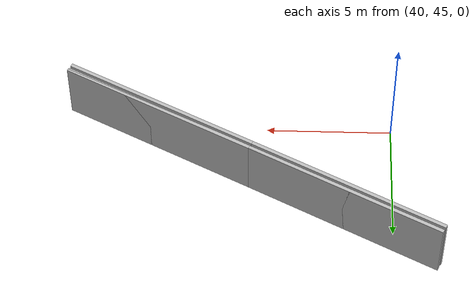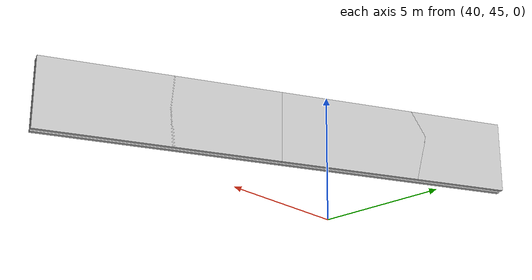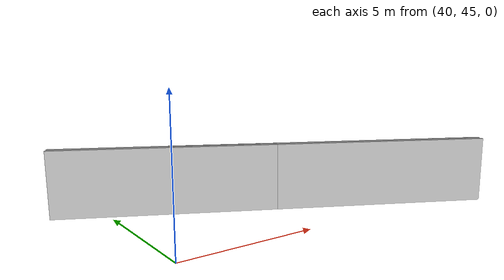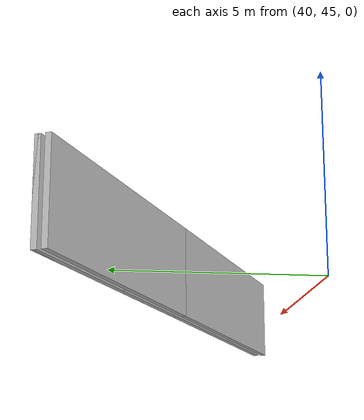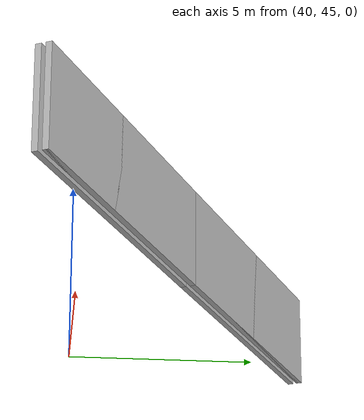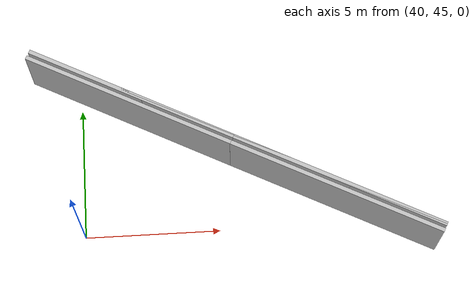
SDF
<?xml version="1.0" ?>
<sdf version="1.6">
  <model name="sps_0011">
    <pose frame="">0 0 0 0 -0 0</pose>
    <static>1</static>
    <self_collide>0</self_collide>
    <allow_auto_disable>0</allow_auto_disable>
    <link name="Wall4351">
      <kinematic>0</kinematic>
      <gravity>1</gravity>
      <self_collide>0</self_collide>
      <collision name="collision">
        <geometry>
          <box>
            <size>8.2609 0.15 2.5</size>
          </box>
        </geometry>
        <pose frame="">0 0 0 0 -0 0</pose>
      </collision>
      <visual name="visual">
        <geometry>
          <box>
            <size>8.2609 0.15 2.5</size>
          </box>
        </geometry>
        <pose frame="">0 0 0 0 -0 0</pose>
        <cast_shadows>1</cast_shadows>
        <transparency>0.0</transparency>
      </visual>
      <pose frame="">49.3427 45.9617 1.25 0 -0 2.67155</pose>
    </link>
    <link name="Wall4352">
      <kinematic>0</kinematic>
      <gravity>1</gravity>
      <self_collide>0</self_collide>
      <collision name="collision">
        <geometry>
          <box>
            <size>8.26108 0.15 2.5</size>
          </box>
        </geometry>
        <pose frame="">0 0 0 0 -0 0</pose>
      </collision>
      <visual name="visual">
        <geometry>
          <box>
            <size>8.26108 0.15 2.5</size>
          </box>
        </geometry>
        <pose frame="">0 0 0 0 -0 0</pose>
        <cast_shadows>1</cast_shadows>
        <transparency>0.0</transparency>
      </visual>
      <pose frame="">41.9821 49.7121 1.25 0 -0 2.66916</pose>
    </link>
    <link name="Wall37845">
      <kinematic>0</kinematic>
      <gravity>1</gravity>
      <self_collide>0</self_collide>
      <collision name="collision">
        <geometry>
          <box>
            <size>8.26149 0.15 2.5</size>
          </box>
        </geometry>
        <pose frame="">0 0 0 0 -0 0</pose>
      </collision>
      <visual name="visual">
        <geometry>
          <box>
            <size>8.26149 0.15 2.5</size>
          </box>
        </geometry>
        <pose frame="">0 0 0 0 -0 0</pose>
        <cast_shadows>1</cast_shadows>
        <transparency>0.0</transparency>
      </visual>
      <pose frame="">41.8657 49.491 1.25 0 0 -0.47243</pose>
    </link>
    <link name="Wall37846">
      <kinematic>0</kinematic>
      <gravity>1</gravity>
      <self_collide>0</self_collide>
      <collision name="collision">
        <geometry>
          <box>
            <size>8.26164 0.15 2.5</size>
          </box>
        </geometry>
        <pose frame="">0 0 0 0 -0 0</pose>
      </collision>
      <visual name="visual">
        <geometry>
          <box>
            <size>8.26164 0.15 2.5</size>
          </box>
        </geometry>
        <pose frame="">0 0 0 0 -0 0</pose>
        <cast_shadows>1</cast_shadows>
        <transparency>0.0</transparency>
      </visual>
      <pose frame="">49.2268 45.7403 1.25 0 0 -0.470057</pose>
    </link>
    <link name="Wall37928">
      <kinematic>0</kinematic>
      <gravity>1</gravity>
      <self_collide>0</self_collide>
      <collision name="collision">
        <geometry>
          <box>
            <size>8.26108 0.15 2.5</size>
          </box>
        </geometry>
        <pose frame="">0 0 0 0 -0 0</pose>
      </collision>
      <visual name="visual">
        <geometry>
          <box>
            <size>8.26108 0.15 2.5</size>
          </box>
        </geometry>
        <pose frame="">0 0 0 0 -0 0</pose>
        <cast_shadows>1</cast_shadows>
        <transparency>0.0</transparency>
      </visual>
      <pose frame="">41.9821 49.7121 1.25 0 0 -0.47243</pose>
    </link>
    <link name="Wall37929">
      <kinematic>0</kinematic>
      <gravity>1</gravity>
      <self_collide>0</self_collide>
      <collision name="collision">
        <geometry>
          <box>
            <size>8.2609 0.15 2.5</size>
          </box>
        </geometry>
        <pose frame="">0 0 0 0 -0 0</pose>
      </collision>
      <visual name="visual">
        <geometry>
          <box>
            <size>8.2609 0.15 2.5</size>
          </box>
        </geometry>
        <pose frame="">0 0 0 0 -0 0</pose>
        <cast_shadows>1</cast_shadows>
        <transparency>0.0</transparency>
      </visual>
      <pose frame="">49.3427 45.9617 1.25 0 0 -0.470045</pose>
    </link>
  </model>
</sdf>
